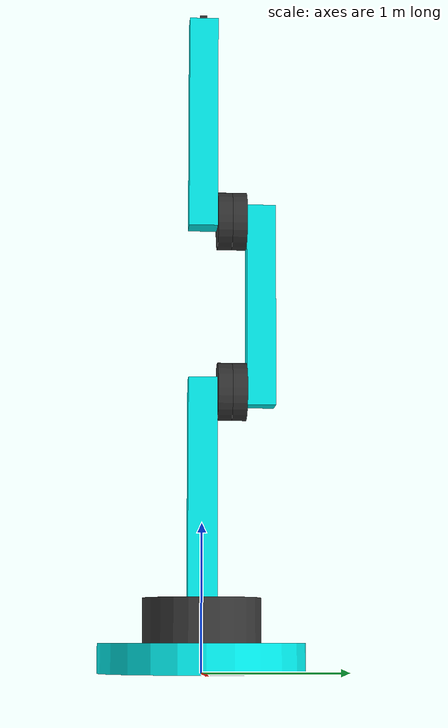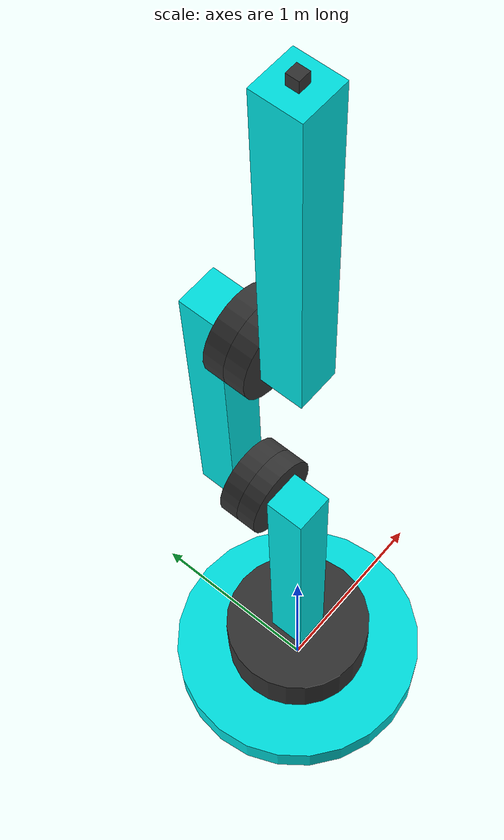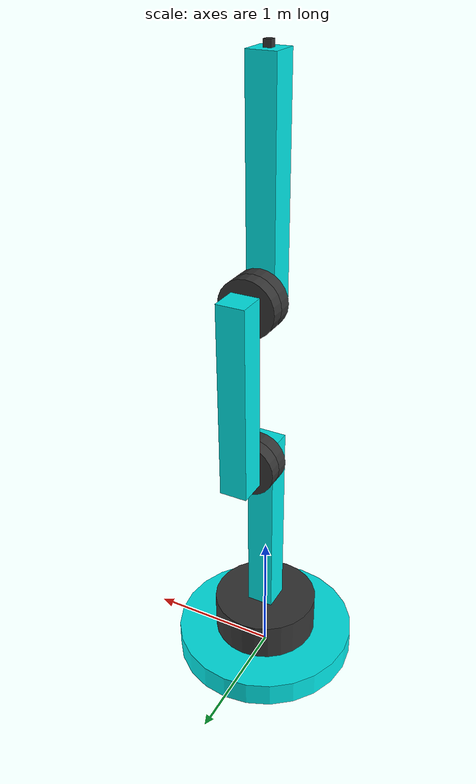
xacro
<?xml version="1.0"?>
<robot name="pi_robot" xmlns:xacro="http://www.ros.org/wiki/xacro">

    <xacro:include filename="$(find two_link_description)/xacro/two_link.gazebo"/>

	<link name="link1">
        <visual>
            <origin xyz="0 0 0.1" rpy="0 0 0"/>
            <geometry>
                <cylinder radius="0.7" length="0.2"/>
            </geometry>
            <material name="Cyan1">
                <color rgba="0 0.9 0.9 1.0"/>
            </material>
        </visual>
        <collision>
            <origin xyz="0 0 0.1" rpy="0 0 0"/>
            <geometry>
                <cylinder radius="0.7" length="0.2"/>
            </geometry>
        </collision>
        <inertial>
            <origin xyz="0 0 0.1" rpy="0 0 0"/>
            <mass value="100"/>
            <inertia
                ixx="0.1" ixy="0.0" ixz="0.0"
                iyy="0.1" iyz="0.0"
                izz="0.1"/>
        </inertial>
    </link>

    <link name="link2">
        <visual>
            <origin xyz="0 0 0.35" rpy="0 0 0"/>
            <geometry>
                <cylinder radius="0.4" length="0.3"/>
            </geometry>
            <material name="Black1">
                <color rgba="0.2 0.2 0.2 1.0"/>
            </material>
        </visual>
        <collision>
            <origin xyz="0 0 0.3" rpy="0 0 0"/>
            <geometry>
                <cylinder radius="0.4" length="0.3"/>
            </geometry>
        </collision>
        <inertial>
            <origin xyz="0 0 0.35" rpy="0 0 0"/>
            <mass value="0.5"/>
            <inertia
                ixx="0.1" ixy="0.0" ixz="0.0"
                iyy="0.1" iyz="0.0"
                izz="0.1"/>
        </inertial>
    </link>

     <joint name="rotate_around" type="revolute">
        <parent link="link1"/>
        <child link="link2"/>
            <origin xyz="0 0 0"/>
            <axis xyz="0 0 1"/>
            <limit effort="100" lower="-3.14" upper="3.14" velocity="0.5"/>

    </joint>

    <link name="link3">
        <visual>
            <origin xyz="0 0 1.24" rpy="0 0 0"/>
            <geometry>
                <box size="0.2 0.2 1.5"/>
            </geometry>
            <material name="Cyan1">
                <color rgba="0 0.9 0.9 1.0"/>
            </material>
        </visual>
        <collision>
            <origin xyz="0 0 1.24" rpy="0 0 0"/>
            <geometry>
                <box size="0.2 0.2 1.5"/>
            </geometry>
        </collision>
        <inertial>
            <origin xyz="0 0 1.24" rpy="0 0 0"/>
            <mass value="0.5"/>
            <inertia
                ixx="0.1" ixy="0.0" ixz="0.0"
                iyy="0.1" iyz="0.0"
                izz="0.1"/>
        </inertial>
    </link>

    <joint name="connect1" type="fixed">
        <parent link="link2"/>
        <child link="link3"/>
        <origin xyz="0 0 0.001"/>
    </joint>

    <link name="link4">
        <visual>
            <origin xyz="0 0.15 1.9" rpy="1.57 0 0"/>
            <geometry>
                <cylinder radius="0.2" length="0.1"/>
            </geometry>
            <material name="Black1">
                <color rgba="0.2 0.2 0.2 1.0"/>
            </material>
        </visual>
        <collision>
            <origin xyz="0 0.15 1.9" rpy="1.57 0 0"/>
            <geometry>
                <cylinder radius="0.2" length="0.1"/>
            </geometry>
        </collision>
        <inertial>
            <origin xyz="0 0.15 1.9" rpy="1.57 0 0"/>
            <mass value="0.5"/>
            <inertia
                ixx="0.1" ixy="0.0" ixz="0.0"
                iyy="0.1" iyz="0.0"
                izz="0.1"/>
        </inertial>
    </link>

    <joint name="connect2" type="fixed">
        <parent link="link3"/>
        <child link="link4"/>
        <origin xyz="0 0 0.001"/>
    </joint>

    <link name="link5">
        <visual>
            <origin xyz="0 0.25 0.0001" rpy="1.57 0 0"/>
            <geometry>
                <cylinder radius="0.2" length="0.1"/>
            </geometry>
            <material name="Black1">
                <color rgba="0.2 0.2 0.2 1.0"/>.25 2.65
            </material>
        </visual>
        <collision>
            <origin xyz="0 0.25 0.0001" rpy="1.57 0 0"/>
            <geometry>
                <cylinder radius="0.2" length="0.1"/>
            </geometry>
        </collision>
        <inertial>
            <origin xyz="0 0.25 0.0001" rpy="1.57 0 0"/>
            <mass value="0.5"/>
            <inertia
                ixx="0.1" ixy="0.0" ixz="0.0"
                iyy="0.1" iyz="0.0"
                izz="0.1"/>
        </inertial>
    </link>

    <joint name="move_arm1" type="revolute">
        <parent link="link4"/>
        <child link="link5"/>
            <origin xyz="0 0 1.9"/>
            <axis xyz="0 1 0"/>
            <limit effort="100" lower="-2" upper="2" velocity="0.5"/>
    </joint>

    <link name="link6">
        <visual>
            <origin xyz="0 0.4 0.6" rpy="0 0 0"/>
            <geometry>
                <box size="0.2 0.2 1.4"/>
            </geometry>
            <material name="Cyan1">
                <color rgba="0 0.9 0.9 1.0"/>
            </material>
        </visual>
        <collision>
            <origin xyz="0 0.4 0.6" rpy="0 0 0"/>
            <geometry>
                <box size="0.2 0.2 1.4"/>
            </geometry>
        </collision>
        <inertial>
            <origin xyz="0 0.4 0.6" rpy="0 0 0"/>
            <mass value="0.5"/>
            <inertia
                ixx="0.1" ixy="0.0" ixz="0.0"
                iyy="0.1" iyz="0.0"
                izz="0.1"/>
        </inertial>
    </link>

    <joint name="connect3" type="fixed">
        <parent link="link5"/>
        <child link="link6"/>
        <origin xyz="0 0 0.001"/>
    </joint>

    <link name="link7">
        <visual>
            <origin xyz="0 0.25 1.2" rpy="1.57 0 0"/>
            <geometry>
                <cylinder radius="0.2" length="0.1"/>
            </geometry>
            <material name="Black1">
                <color rgba="0.2 0.2 0.2 1.0"/>
            </material>
        </visual>
        <collision>
            <origin xyz="0 0.25 1.2" rpy="1.57 0 0"/>
            <geometry>
                <cylinder radius="0.2" length="0.1"/>
            </geometry>
        </collision>
        <inertial>
            <origin xyz="0 0.25 1.2" rpy="1.57 0 0"/>
            <mass value="0.5"/>
            <inertia
                ixx="0.1" ixy="0.0" ixz="0.0"
                iyy="0.1" iyz="0.0"
                izz="0.1"/>
        </inertial>
    </link>

    <joint name="connect4" type="fixed">
        <parent link="link6"/>
        <child link="link7"/>
        <origin xyz="0 0 0.001"/>
    </joint>

    <link name="link8">
        <visual>
            <origin xyz="0 0.15 0.0001" rpy="1.57 0 0"/>
            <geometry>
                <cylinder radius="0.2" length="0.1"/>
            </geometry>
            <material name="Black1">
                <color rgba="0.2 0.2 0.2 1.0"/>
            </material>
        </visual>
        <collision>
            <origin xyz="0 0.15 0.0001" rpy="1.57 0 0"/>
            <geometry>
                <cylinder radius="0.2" length="0.1"/>
            </geometry>
        </collision>
        <inertial>
            <origin xyz="0 0.15 0.0001" rpy="1.57 0 0"/>
            <mass value="0.5"/>
            <inertia
                ixx="0.1" ixy="0.0" ixz="0.0"
                iyy="0.1" iyz="0.0"
                izz="0.1"/>
        </inertial>
    </link>

    <joint name="move_arm2" type="revolute">
        <parent link="link7"/>
        <child link="link8"/>
            <origin xyz="0 0 1.2"/>
            <axis xyz="0 1 0"/>
            <limit effort="100" lower="-1" upper="1" velocity="0.5"/>
    </joint>

    <link name="link9">
        <visual>
            <origin xyz="0 0 0.7" rpy="0 0 0"/>
            <geometry>
                <box size="0.2 0.2 1.5"/>
            </geometry>
            <material name="Cyan1">
                <color rgba="0 0.9 0.9 1.0"/>
            </material>
        </visual>
        <collision>
            <origin xyz="0 0 0.7" rpy="0 0 0"/>
            <geometry>
                <box size="0.2 0.2 1.5"/>
            </geometry>
        </collision>
        <inertial>
            <origin xyz="0 0 0.7" rpy="0 0 0"/>
            <mass value="0.5"/>
            <inertia
                ixx="0.1" ixy="0.0" ixz="0.0"
                iyy="0.1" iyz="0.0"
                izz="0.1"/>
        </inertial>
    </link>

    <joint name="connect5" type="fixed">
        <parent link="link8"/>
        <child link="link9"/>
        <origin xyz="0 0 0.001"/>
    </joint>

    <link name="camera_link">
        <visual>
            <origin xyz="0 0 0" rpy="0 0 0"/>
            <geometry>
                <box size="0.05 0.05 0.05"/>
            </geometry>
            <material name="Black1">
                <color rgba="0.2 0.2 0.2 1.0"/>
            </material>
        </visual>
        <collision>
            <origin xyz="0 0 0.7" rpy="0 0 0"/>
            <geometry>
                <cylinder radius="0.05" length="0.04"/>
            </geometry>
        </collision>
        <inertial>
            <origin xyz="0 0 0.7" rpy="0 0 0"/>
            <mass value="0.5"/>
            <inertia
                ixx="0.1" ixy="0.0" ixz="0.0"
                iyy="0.1" iyz="0.0"
                izz="0.1"/>
        </inertial>
    </link>

    <joint name="camera_joint" type="fixed">
        <parent link="link9"/>
        <child link="camera_link"/>
        <origin xyz="0 0 1.47" rpy="0 -1.57 0"/>
    </joint>

    <link name="camera_optical_link"></link>

    <joint name="camera_optical_joint" type="fixed">
        <parent link="camera_link"/>
        <child link="camera_optical_link"/>
        <origin xyz="0 0 0.76" rpy="1.57 0 1.57"/>
    </joint>

</robot>
